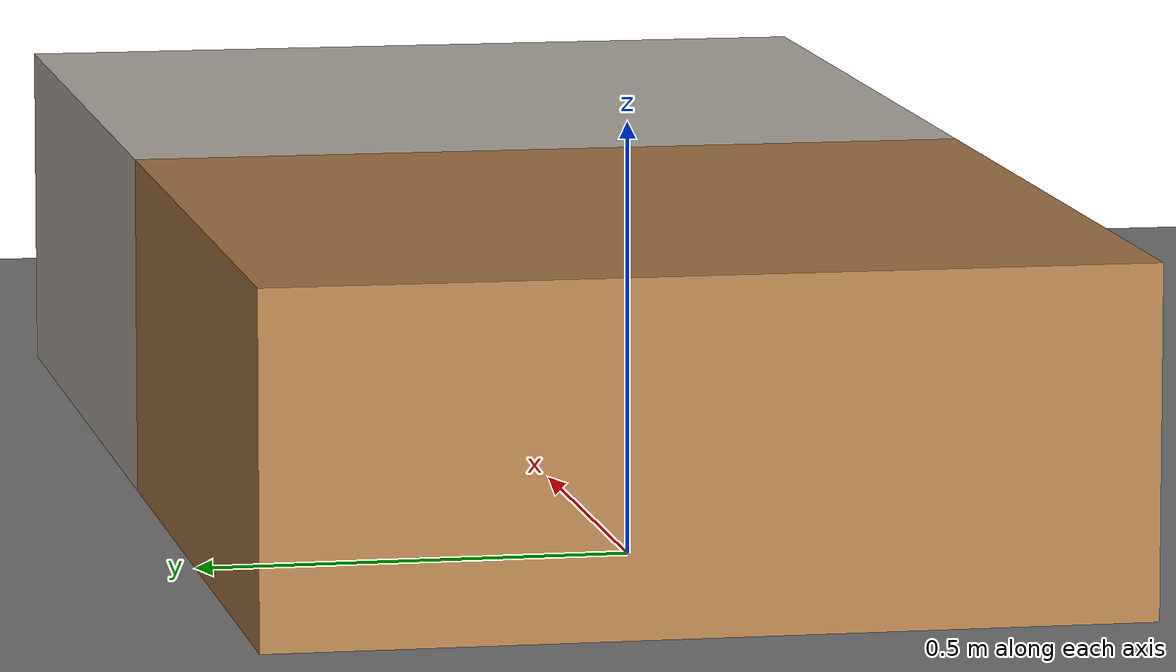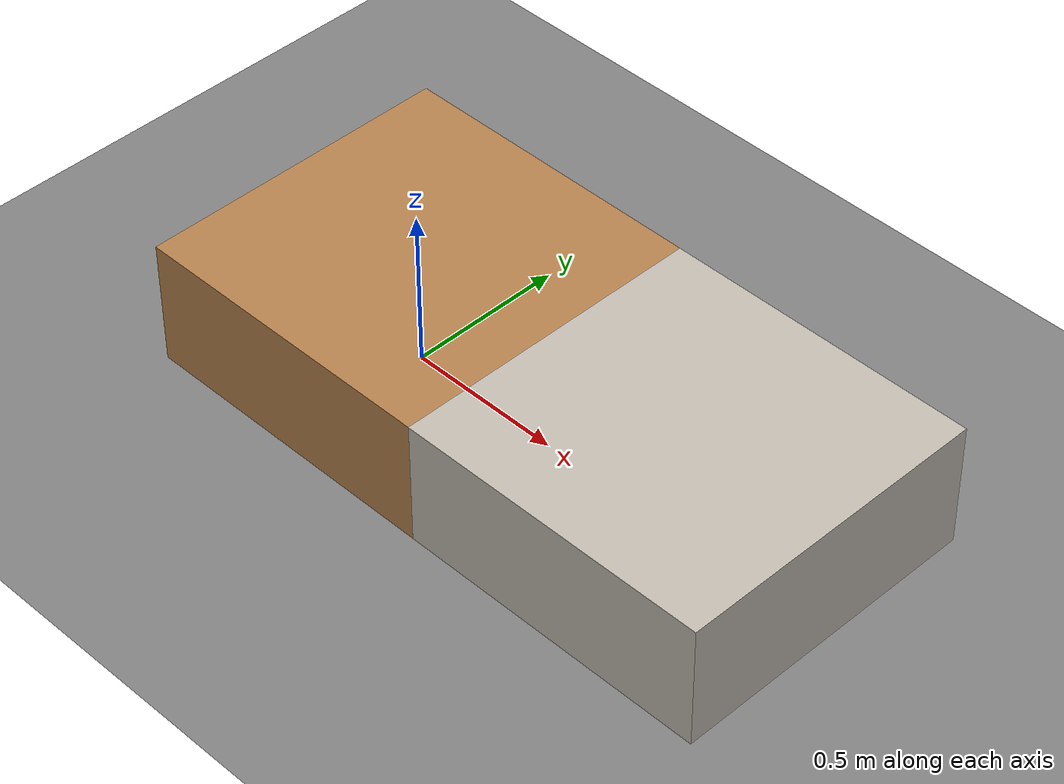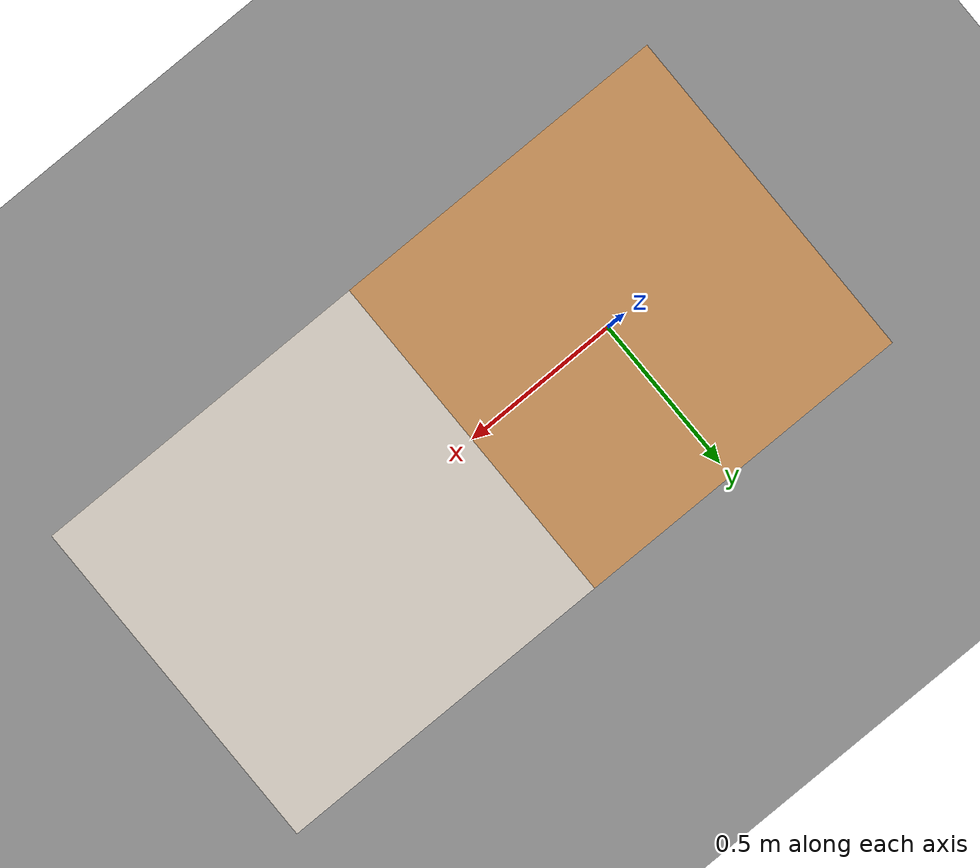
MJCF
<mujoco model="material_texture_example">

    <option gravity="0 0 -9.81" timestep="0.01"/>

    <asset>
        <texture name="wood_tex" type="2d" file="assets/wood_texture.png"
             height="256" width="256" />
        <texture name="fabric_tex" type="2d" file="assets/fabric_texture.png"
             height="256" width="256" />
        <material name="wood_mat" texture="wood_tex" specular="0.5" shininess="0.3"
              reflectance="0.1"/>
        <material name="fabric_mat" texture="fabric_tex" specular="0.1" shininess="0.1"
              emission="0.05"/>
        <material name="matte_gray" rgba="0.5 0.5 0.5 1" specular="0.5" shininess="0.5"/>
    </asset>

    <worldbody>
        <geom type="plane" size="5 5 0.1" material="matte_gray" />

        <body pos="0 0 0.2">
            <geom type="box" size="0.5 0.5 0.2" material="wood_mat"/>
        </body>

        <body pos="1 0 0.2">
            <geom type="box" size="0.5 0.5 0.2" material="fabric_mat"/>
        </body>
    </worldbody>

</mujoco>
